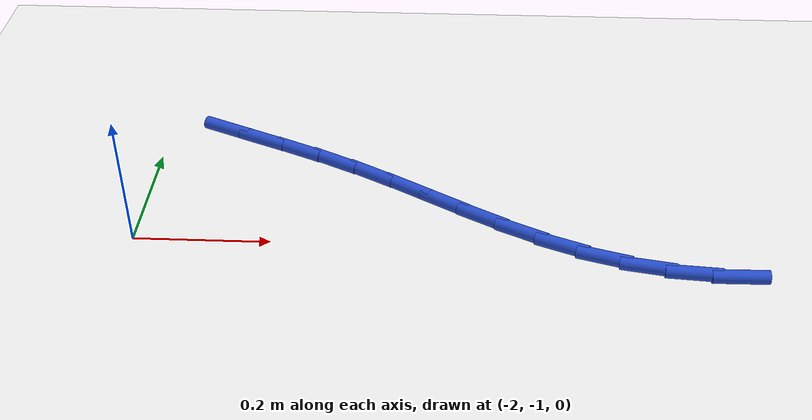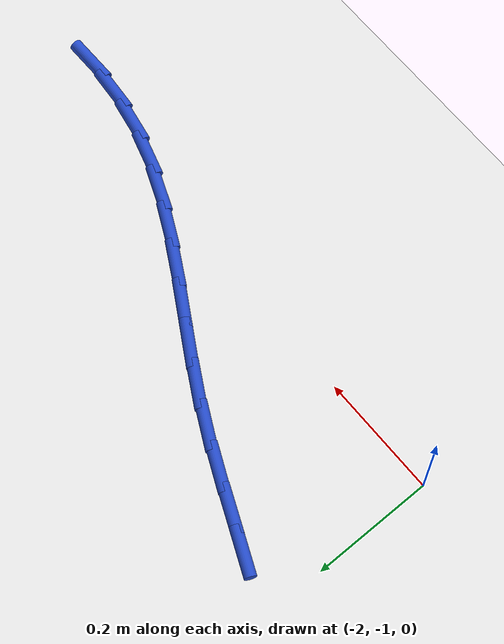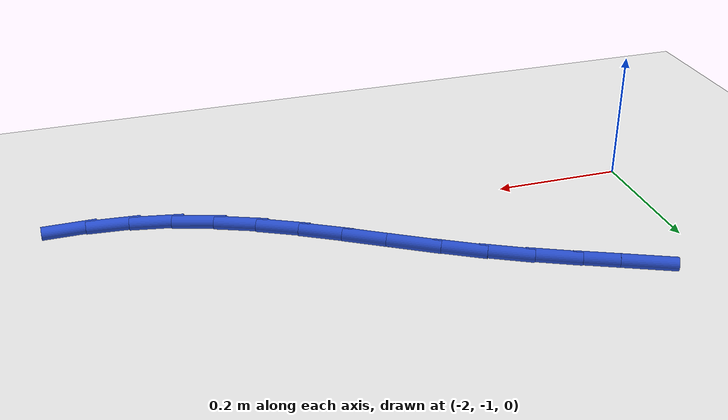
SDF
<sdf version="1.6">
 <world name="default">
  <model name="ground_plane">
   <static>1</static>
   <link name="link">
    <collision name="collision">
     <geometry><plane><normal>0 0 1</normal><size>100 100</size></plane></geometry>
     <surface><friction><ode><mu>100</mu><mu2>50</mu2></ode></friction></surface>
    </collision>
    <visual name="visual">
     <cast_shadows>0</cast_shadows>
     <geometry><plane><normal>0 0 1</normal><size>100 100</size></plane></geometry>
     <material>
      <script><uri>file://media/materials/scripts/gazebo.material</uri><name>Gazebo/WhiteGlow</name></script>
     </material>
    </visual>
   </link>
  </model>
  <model name="line">
   <link name="link_71">
    <pose>-1.9075588585907288 -0.7317072234260104 0.01 0 1.57 -0.4148464238689342</pose>
    <collision name="collision">
     <geometry><cylinder><radius>0.01</radius><length>0.08</length></cylinder></geometry>
    </collision>
    <visual name="visual">
     <material>
      <script><name>Gazebo/Blue</name><uri>file://media/materials/scripts/gazebo.material</uri></script>
     </material>
     <geometry><cylinder><radius>0.01</radius><length>0.08</length></cylinder></geometry>
    </visual>
   </link>
   <link name="link_72">
    <pose>-1.847508449944446 -0.7581537444593843 0.01 0 1.57 -0.4121260881669827</pose>
    <collision name="collision">
     <geometry><cylinder><radius>0.01</radius><length>0.08</length></cylinder></geometry>
    </collision>
    <visual name="visual">
     <material>
      <script><name>Gazebo/Blue</name><uri>file://media/materials/scripts/gazebo.material</uri></script>
     </material>
     <geometry><cylinder><radius>0.01</radius><length>0.08</length></cylinder></geometry>
    </visual>
   </link>
   <link name="link_73">
    <pose>-1.7870588411010262 -0.7845799717292725 0.01 0 1.57 -0.4311795676824833</pose>
    <collision name="collision">
     <geometry><cylinder><radius>0.01</radius><length>0.08</length></cylinder></geometry>
    </collision>
    <visual name="visual">
     <material>
      <script><name>Gazebo/Blue</name><uri>file://media/materials/scripts/gazebo.material</uri></script>
     </material>
     <geometry><cylinder><radius>0.01</radius><length>0.08</length></cylinder></geometry>
    </visual>
   </link>
   <link name="link_74">
    <pose>-1.7269650037657316 -0.8122261095580434 0.01 0 1.57 -0.4712744061442278</pose>
    <collision name="collision">
     <geometry><cylinder><radius>0.01</radius><length>0.08</length></cylinder></geometry>
    </collision>
    <visual name="visual">
     <material>
      <script><name>Gazebo/Blue</name><uri>file://media/materials/scripts/gazebo.material</uri></script>
     </material>
     <geometry><cylinder><radius>0.01</radius><length>0.08</length></cylinder></geometry>
    </visual>
   </link>
   <link name="link_75">
    <pose>-1.6679628404613511 -0.8422918523498509 0.01 0 1.57 -0.5126511754167062</pose>
    <collision name="collision">
     <geometry><cylinder><radius>0.01</radius><length>0.08</length></cylinder></geometry>
    </collision>
    <visual name="visual">
     <material>
      <script><name>Gazebo/Blue</name><uri>file://media/materials/scripts/gazebo.material</uri></script>
     </material>
     <geometry><cylinder><radius>0.01</radius><length>0.08</length></cylinder></geometry>
    </visual>
   </link>
   <link name="link_76">
    <pose>-1.6102283287163475 -0.8747874090258873 0.01 0 1.57 -0.5329680969177052</pose>
    <collision name="collision">
     <geometry><cylinder><radius>0.01</radius><length>0.08</length></cylinder></geometry>
    </collision>
    <visual name="visual">
     <material>
      <script><name>Gazebo/Blue</name><uri>file://media/materials/scripts/gazebo.material</uri></script>
     </material>
     <geometry><cylinder><radius>0.01</radius><length>0.08</length></cylinder></geometry>
    </visual>
   </link>
   <link name="link_77">
    <pose>-1.55330045575455 -0.9083697881183076 0.01 0 1.57 -0.5310516978979697</pose>
    <collision name="collision">
     <geometry><cylinder><radius>0.01</radius><length>0.08</length></cylinder></geometry>
    </collision>
    <visual name="visual">
     <material>
      <script><name>Gazebo/Blue</name><uri>file://media/materials/scripts/gazebo.material</uri></script>
     </material>
     <geometry><cylinder><radius>0.01</radius><length>0.08</length></cylinder></geometry>
    </visual>
   </link>
   <link name="link_78">
    <pose>-1.4966836461672717 -0.9416225744863744 0.01 0 1.57 -0.506432180173004</pose>
    <collision name="collision">
     <geometry><cylinder><radius>0.01</radius><length>0.08</length></cylinder></geometry>
    </collision>
    <visual name="visual">
     <material>
      <script><name>Gazebo/Blue</name><uri>file://media/materials/scripts/gazebo.material</uri></script>
     </material>
     <geometry><cylinder><radius>0.01</radius><length>0.08</length></cylinder></geometry>
    </visual>
   </link>
   <link name="link_79">
    <pose>-1.4398823245458274 -0.9731293529893463 0.01 0 1.57 -0.458116204219248</pose>
    <collision name="collision">
     <geometry><cylinder><radius>0.01</radius><length>0.08</length></cylinder></geometry>
    </collision>
    <visual name="visual">
     <material>
      <script><name>Gazebo/Blue</name><uri>file://media/materials/scripts/gazebo.material</uri></script>
     </material>
     <geometry><cylinder><radius>0.01</radius><length>0.08</length></cylinder></geometry>
    </visual>
   </link>
   <link name="link_80">
    <pose>-1.3824009154815295 -1.0014737084864849 0.01 0 1.57 -0.38494698794759546</pose>
    <collision name="collision">
     <geometry><cylinder><radius>0.01</radius><length>0.08</length></cylinder></geometry>
    </collision>
    <visual name="visual">
     <material>
      <script><name>Gazebo/Blue</name><uri>file://media/materials/scripts/gazebo.material</uri></script>
     </material>
     <geometry><cylinder><radius>0.01</radius><length>0.08</length></cylinder></geometry>
    </visual>
   </link>
   <link name="link_81">
    <pose>-1.323743843565693 -1.0252392258370497 0.01 0 1.57 -0.28697570533745675</pose>
    <collision name="collision">
     <geometry><cylinder><radius>0.01</radius><length>0.08</length></cylinder></geometry>
    </collision>
    <visual name="visual">
     <material>
      <script><name>Gazebo/Blue</name><uri>file://media/materials/scripts/gazebo.material</uri></script>
     </material>
     <geometry><cylinder><radius>0.01</radius><length>0.08</length></cylinder></geometry>
    </visual>
   </link>
   <link name="link_82">
    <pose>-1.263429431043897 -1.0430393441902786 0.01 0 1.57 -0.17978260090399764</pose>
    <collision name="collision">
     <geometry><cylinder><radius>0.01</radius><length>0.08</length></cylinder></geometry>
    </collision>
    <visual name="visual">
     <material>
      <script><name>Gazebo/Blue</name><uri>file://media/materials/scripts/gazebo.material</uri></script>
     </material>
     <geometry><cylinder><radius>0.01</radius><length>0.08</length></cylinder></geometry>
    </visual>
   </link>
   <link name="link_83">
    <pose>-1.201363328924606 -1.0543195442027362 0.01 0 1.57 -0.08059654395726681</pose>
    <collision name="collision">
     <geometry><cylinder><radius>0.01</radius><length>0.08</length></cylinder></geometry>
    </collision>
    <visual name="visual">
     <material>
      <script><name>Gazebo/Blue</name><uri>file://media/materials/scripts/gazebo.material</uri></script>
     </material>
     <geometry><cylinder><radius>0.01</radius><length>0.08</length></cylinder></geometry>
    </visual>
   </link>
   <link name="link_84">
    <pose>-1.1378803269405322 -1.0594471622390762 0.01 0 1.57 0.009446954297323094</pose>
    <collision name="collision">
     <geometry><cylinder><radius>0.01</radius><length>0.08</length></cylinder></geometry>
    </collision>
    <visual name="visual">
     <material>
      <script><name>Gazebo/Blue</name><uri>file://media/materials/scripts/gazebo.material</uri></script>
     </material>
     <geometry><cylinder><radius>0.01</radius><length>0.08</length></cylinder></geometry>
    </visual>
   </link>
  </model>
 </world>
</sdf>
